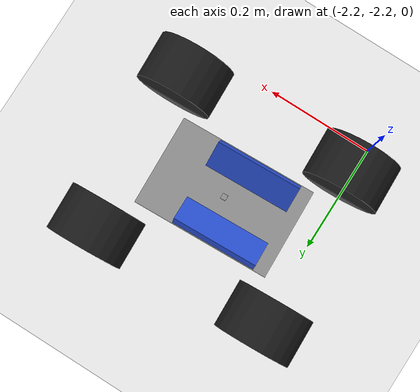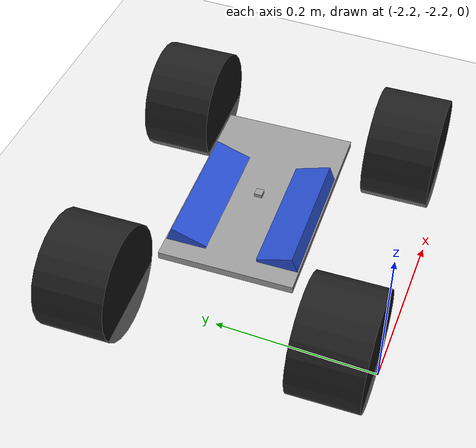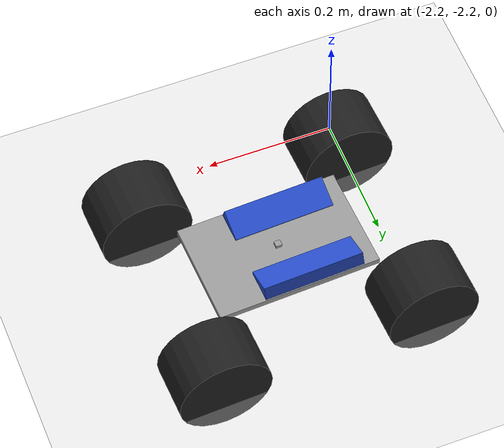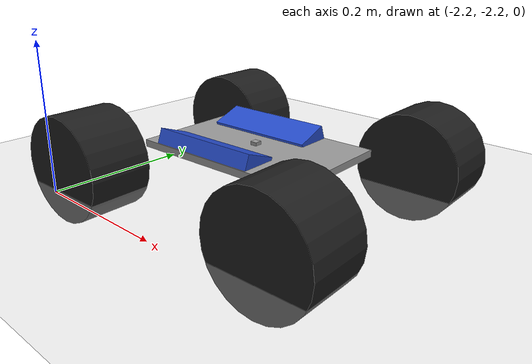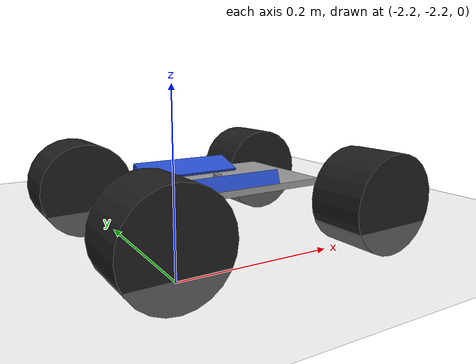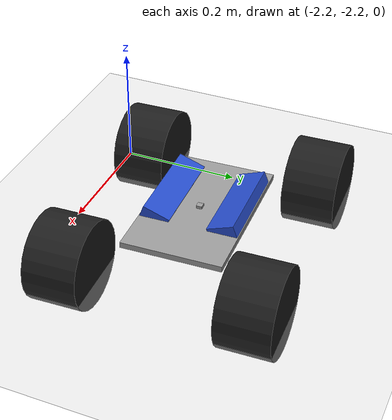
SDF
<sdf version="1.7">
 <world name="default">
  <light name="sun" type="directional">
   <pose>0 0 10 0 -0 0</pose>
   <diffuse>0.8 0.8 0.8 1</diffuse>
   <specular>0.2 0.2 0.2 1</specular>
   <attenuation>
    <range>1000</range>
    <constant>0.9</constant>
    <linear>0.01</linear>
    <quadratic>0.001</quadratic>
   </attenuation>
   <direction>-0.5 0.1 -0.9</direction>
   <spot><inner_angle>0</inner_angle><outer_angle>0</outer_angle><falloff>0</falloff></spot>
  </light>
  <model name="ground_plane">
   <static>1</static>
   <link name="link">
    <collision name="collision">
     <geometry><plane><normal>0 0 1</normal><size>100 100</size></plane></geometry>
     <surface>
      <contact><collide_bitmask>65535</collide_bitmask></contact>
      <friction><ode><mu>100</mu><mu2>50</mu2></ode></friction>
     </surface>
    </collision>
    <visual name="visual">
     <cast_shadows>0</cast_shadows>
     <geometry><plane><normal>0 0 1</normal><size>100 100</size></plane></geometry>
     <material>
      <script><uri>file://media/materials/scripts/gazebo.material</uri><name>Gazebo/Grey</name></script>
     </material>
    </visual>
   </link>
  </model>
  <gravity>0 0 -9.8</gravity>
  <magnetic_field>6e-06 2.3e-05 -4.2e-05</magnetic_field>
  <atmosphere type="adiabatic"/>
  <physics name="default_physics" default="0" type="ode">
   <max_step_size>0.001</max_step_size>
   <real_time_factor>1</real_time_factor>
   <real_time_update_rate>1000</real_time_update_rate>
  </physics>
  <scene><ambient>0.4 0.4 0.4 1</ambient><background>0.7 0.7 0.7 1</background><shadows>1</shadows></scene>
  <audio><device>default</device></audio>
  <spherical_coordinates>
   <surface_model>EARTH_WGS84</surface_model>
   <latitude_deg>0</latitude_deg>
   <longitude_deg>0</longitude_deg>
   <elevation>0</elevation>
   <heading_deg>0</heading_deg>
  </spherical_coordinates>
  <model name="ackermann_vehicle">
   <link name="base_link">
    <inertial>
     <pose>-0.006634 0 -0.003536 0 -0 0</pose>
     <mass>3.795</mass>
     <inertia>
      <ixx>0.0121404</ixx>
      <ixy>0</ixy>
      <ixz>0.000102071</ixz>
      <iyy>0.0201814</iyy>
      <iyz>0</iyz>
      <izz>0.0301018</izz>
     </inertia>
    </inertial>
    <collision name="base_link_fixed_joint_lump__chassis_collision">
     <pose>0 0 -0.005 0 -0 0</pose>
     <geometry><box><size>0.258 0.168 0.01</size></box></geometry>
    </collision>
    <collision name="base_link_fixed_joint_lump__left_battery_collision_1">
     <pose>-0.025 0.057319 0.00052 0.349066 -0 0</pose>
     <geometry><box><size>0.16 0.047 0.024</size></box></geometry>
    </collision>
    <collision name="base_link_fixed_joint_lump__right_battery_collision_2">
     <pose>-0.025 -0.057319 0.00052 -0.349066 0 0</pose>
     <geometry><box><size>0.16 0.047 0.024</size></box></geometry>
    </collision>
    <visual name="base_link_visual">
     <geometry><box><size>0.01 0.01 0.01</size></box></geometry>
     <material>
      <script><name>Gazebo/Grey</name><uri>file://media/materials/scripts/gazebo.material</uri></script>
     </material>
    </visual>
    <visual name="base_link_fixed_joint_lump__chassis_visual_1">
     <pose>0 0 -0.005 0 -0 0</pose>
     <geometry><box><size>0.258 0.168 0.01</size></box></geometry>
     <material>
      <script><name>Gazebo/Grey</name><uri>file://media/materials/scripts/gazebo.material</uri></script>
     </material>
    </visual>
    <visual name="base_link_fixed_joint_lump__left_battery_visual_2">
     <pose>-0.025 0.057319 0.00052 0.349066 -0 0</pose>
     <geometry><box><size>0.16 0.047 0.024</size></box></geometry>
     <material>
      <script><name>Gazebo/Blue</name><uri>file://media/materials/scripts/gazebo.material</uri></script>
     </material>
    </visual>
    <visual name="base_link_fixed_joint_lump__right_battery_visual_3">
     <pose>-0.025 -0.057319 0.00052 -0.349066 0 0</pose>
     <geometry><box><size>0.16 0.047 0.024</size></box></geometry>
     <material>
      <script><name>Gazebo/Blue</name><uri>file://media/materials/scripts/gazebo.material</uri></script>
     </material>
    </visual>
   </link>
   <joint name="left_front_shock" type="prismatic">
    <pose relative_to="base_link">0.1675 0.1525 -0.0235 0 -0 0</pose>
    <parent>base_link</parent>
    <child>left_steering_link</child>
    <axis>
     <xyz>0 0 -1</xyz>
     <limit><lower>-0.042</lower><upper>0.042</upper><effort>12.5106</effort><velocity>1000</velocity></limit>
     <dynamics><spring_reference>0</spring_reference><spring_stiffness>0</spring_stiffness></dynamics>
    </axis>
   </joint>
   <link name="left_steering_link">
    <pose relative_to="left_front_shock">0 0 0 0 -0 0</pose>
    <inertial>
     <mass>0.001</mass>
     <inertia><ixx>0.001</ixx><ixy>0</ixy><ixz>0</ixz><iyy>0.001</iyy><iyz>0</iyz><izz>0.001</izz></inertia>
    </inertial>
   </link>
   <joint name="left_steering_joint" type="revolute">
    <pose relative_to="left_steering_link">0 0 0 0 -0 0</pose>
    <parent>left_steering_link</parent>
    <child>left_front_axle_carrier</child>
    <axis>
     <xyz>0 0 1</xyz>
     <limit>
      <lower>-0.785398</lower>
      <upper>0.785398</upper>
      <effort>0.5649</effort>
      <velocity>4.553</velocity>
     </limit>
     <dynamics><spring_reference>0</spring_reference><spring_stiffness>0</spring_stiffness></dynamics>
    </axis>
   </joint>
   <link name="left_front_axle_carrier">
    <pose relative_to="left_steering_joint">0 0 0 0 -0 0</pose>
    <inertial>
     <mass>0.001</mass>
     <inertia><ixx>0.001</ixx><ixy>0</ixy><ixz>0</ixz><iyy>0.001</iyy><iyz>0</iyz><izz>0.001</izz></inertia>
    </inertial>
   </link>
   <joint name="left_front_axle" type="revolute">
    <pose relative_to="left_front_axle_carrier">0 0 0 1.5708 -0 0</pose>
    <parent>left_front_axle_carrier</parent>
    <child>left_front_wheel</child>
    <axis>
     <xyz>0 0 -1</xyz>
     <limit><effort>5.12766</effort><velocity>244.87</velocity><lower>-1e+16</lower><upper>1e+16</upper></limit>
     <dynamics><spring_reference>0</spring_reference><spring_stiffness>0</spring_stiffness></dynamics>
    </axis>
   </joint>
   <link name="left_front_wheel">
    <pose relative_to="left_front_axle">0 0 0 0 -0 0</pose>
    <inertial>
     <mass>0.29</mass>
     <inertia>
      <ixx>0.000746466</ixx>
      <ixy>0</ixy>
      <ixz>0</ixz>
      <iyy>0.000746466</iyy>
      <iyz>0</iyz>
      <izz>0.00111094</izz>
     </inertia>
    </inertial>
    <collision name="left_front_wheel_collision">
     <geometry><cylinder><length>0.0889</length><radius>0.073025</radius></cylinder></geometry>
    </collision>
    <visual name="left_front_wheel_visual">
     <geometry><cylinder><length>0.0889</length><radius>0.073025</radius></cylinder></geometry>
     <material>
      <script><name>Gazebo/Black</name><uri>file://media/materials/scripts/gazebo.material</uri></script>
     </material>
    </visual>
   </link>
   <joint name="left_rear_shock" type="prismatic">
    <pose relative_to="base_link">-0.1675 0.1525 -0.0235 0 -0 0</pose>
    <parent>base_link</parent>
    <child>left_rear_axle_carrier</child>
    <axis>
     <xyz>0 0 -1</xyz>
     <limit><lower>-0.042</lower><upper>0.042</upper><effort>12.5106</effort><velocity>1000</velocity></limit>
     <dynamics><spring_reference>0</spring_reference><spring_stiffness>0</spring_stiffness></dynamics>
    </axis>
   </joint>
   <link name="left_rear_axle_carrier">
    <pose relative_to="left_rear_shock">0 0 0 0 -0 0</pose>
    <inertial>
     <mass>0.001</mass>
     <inertia><ixx>0.001</ixx><ixy>0</ixy><ixz>0</ixz><iyy>0.001</iyy><iyz>0</iyz><izz>0.001</izz></inertia>
    </inertial>
   </link>
   <joint name="left_rear_axle" type="revolute">
    <pose relative_to="left_rear_axle_carrier">0 0 0 1.5708 -0 0</pose>
    <parent>left_rear_axle_carrier</parent>
    <child>left_rear_wheel</child>
    <axis>
     <xyz>0 0 -1</xyz>
     <limit><effort>5.12766</effort><velocity>244.87</velocity><lower>-1e+16</lower><upper>1e+16</upper></limit>
     <dynamics><spring_reference>0</spring_reference><spring_stiffness>0</spring_stiffness></dynamics>
    </axis>
   </joint>
   <link name="left_rear_wheel">
    <pose relative_to="left_rear_axle">0 0 0 0 -0 0</pose>
    <inertial>
     <mass>0.29</mass>
     <inertia>
      <ixx>0.000746466</ixx>
      <ixy>0</ixy>
      <ixz>0</ixz>
      <iyy>0.000746466</iyy>
      <iyz>0</iyz>
      <izz>0.00111094</izz>
     </inertia>
    </inertial>
    <collision name="left_rear_wheel_collision">
     <geometry><cylinder><length>0.0889</length><radius>0.073025</radius></cylinder></geometry>
    </collision>
    <visual name="left_rear_wheel_visual">
     <geometry><cylinder><length>0.0889</length><radius>0.073025</radius></cylinder></geometry>
     <material>
      <script><name>Gazebo/Black</name><uri>file://media/materials/scripts/gazebo.material</uri></script>
     </material>
    </visual>
   </link>
   <joint name="right_front_shock" type="prismatic">
    <pose relative_to="base_link">0.1675 -0.1525 -0.0235 0 -0 0</pose>
    <parent>base_link</parent>
    <child>right_steering_link</child>
    <axis>
     <xyz>0 0 -1</xyz>
     <limit><lower>-0.042</lower><upper>0.042</upper><effort>12.5106</effort><velocity>1000</velocity></limit>
     <dynamics><spring_reference>0</spring_reference><spring_stiffness>0</spring_stiffness></dynamics>
    </axis>
   </joint>
   <link name="right_steering_link">
    <pose relative_to="right_front_shock">0 0 0 0 -0 0</pose>
    <inertial>
     <mass>0.001</mass>
     <inertia><ixx>0.001</ixx><ixy>0</ixy><ixz>0</ixz><iyy>0.001</iyy><iyz>0</iyz><izz>0.001</izz></inertia>
    </inertial>
   </link>
   <joint name="right_steering_joint" type="revolute">
    <pose relative_to="right_steering_link">0 0 0 0 -0 0</pose>
    <parent>right_steering_link</parent>
    <child>right_front_axle_carrier</child>
    <axis>
     <xyz>0 0 1</xyz>
     <limit>
      <lower>-0.785398</lower>
      <upper>0.785398</upper>
      <effort>0.5649</effort>
      <velocity>4.553</velocity>
     </limit>
     <dynamics><spring_reference>0</spring_reference><spring_stiffness>0</spring_stiffness></dynamics>
    </axis>
   </joint>
   <link name="right_front_axle_carrier">
    <pose relative_to="right_steering_joint">0 0 0 0 -0 0</pose>
    <inertial>
     <mass>0.001</mass>
     <inertia><ixx>0.001</ixx><ixy>0</ixy><ixz>0</ixz><iyy>0.001</iyy><iyz>0</iyz><izz>0.001</izz></inertia>
    </inertial>
   </link>
   <joint name="right_front_axle" type="revolute">
    <pose relative_to="right_front_axle_carrier">0 0 0 1.5708 -0 0</pose>
    <parent>right_front_axle_carrier</parent>
    <child>right_front_wheel</child>
    <axis>
     <xyz>0 0 -1</xyz>
     <limit><effort>5.12766</effort><velocity>244.87</velocity><lower>-1e+16</lower><upper>1e+16</upper></limit>
     <dynamics><spring_reference>0</spring_reference><spring_stiffness>0</spring_stiffness></dynamics>
    </axis>
   </joint>
   <link name="right_front_wheel">
    <pose relative_to="right_front_axle">0 0 0 0 -0 0</pose>
    <inertial>
     <mass>0.29</mass>
     <inertia>
      <ixx>0.000746466</ixx>
      <ixy>0</ixy>
      <ixz>0</ixz>
      <iyy>0.000746466</iyy>
      <iyz>0</iyz>
      <izz>0.00111094</izz>
     </inertia>
    </inertial>
    <collision name="right_front_wheel_collision">
     <geometry><cylinder><length>0.0889</length><radius>0.073025</radius></cylinder></geometry>
    </collision>
    <visual name="right_front_wheel_visual">
     <geometry><cylinder><length>0.0889</length><radius>0.073025</radius></cylinder></geometry>
     <material>
      <script><name>Gazebo/Black</name><uri>file://media/materials/scripts/gazebo.material</uri></script>
     </material>
    </visual>
   </link>
   <joint name="right_rear_shock" type="prismatic">
    <pose relative_to="base_link">-0.1675 -0.1525 -0.0235 0 -0 0</pose>
    <parent>base_link</parent>
    <child>right_rear_axle_carrier</child>
    <axis>
     <xyz>0 0 -1</xyz>
     <limit><lower>-0.042</lower><upper>0.042</upper><effort>12.5106</effort><velocity>1000</velocity></limit>
     <dynamics><spring_reference>0</spring_reference><spring_stiffness>0</spring_stiffness></dynamics>
    </axis>
   </joint>
   <link name="right_rear_axle_carrier">
    <pose relative_to="right_rear_shock">0 0 0 0 -0 0</pose>
    <inertial>
     <mass>0.001</mass>
     <inertia><ixx>0.001</ixx><ixy>0</ixy><ixz>0</ixz><iyy>0.001</iyy><iyz>0</iyz><izz>0.001</izz></inertia>
    </inertial>
   </link>
   <joint name="right_rear_axle" type="revolute">
    <pose relative_to="right_rear_axle_carrier">0 0 0 1.5708 -0 0</pose>
    <parent>right_rear_axle_carrier</parent>
    <child>right_rear_wheel</child>
    <axis>
     <xyz>0 0 -1</xyz>
     <limit><effort>5.12766</effort><velocity>244.87</velocity><lower>-1e+16</lower><upper>1e+16</upper></limit>
     <dynamics><spring_reference>0</spring_reference><spring_stiffness>0</spring_stiffness></dynamics>
    </axis>
   </joint>
   <link name="right_rear_wheel">
    <pose relative_to="right_rear_axle">0 0 0 0 -0 0</pose>
    <inertial>
     <mass>0.29</mass>
     <inertia>
      <ixx>0.000746466</ixx>
      <ixy>0</ixy>
      <ixz>0</ixz>
      <iyy>0.000746466</iyy>
      <iyz>0</iyz>
      <izz>0.00111094</izz>
     </inertia>
    </inertial>
    <collision name="right_rear_wheel_collision">
     <geometry><cylinder><length>0.0889</length><radius>0.073025</radius></cylinder></geometry>
    </collision>
    <visual name="right_rear_wheel_visual">
     <geometry><cylinder><length>0.0889</length><radius>0.073025</radius></cylinder></geometry>
     <material>
      <script><name>Gazebo/Black</name><uri>file://media/materials/scripts/gazebo.material</uri></script>
     </material>
    </visual>
   </link>
   <plugin name="gazebo_ros_control" filename="libgazebo_ros_control.so">
    <robotNamespace>/</robotNamespace>
   </plugin>
   <frame name="offset_to_left_battery" attached_to="left_battery_offset">
    <pose>0 0.0235 -0.008 0 -0 0</pose>
   </frame>
   <frame name="left_battery" attached_to="offset_to_left_battery"/>
   <frame name="chassis_to_left_battery" attached_to="chassis"><pose>-0.025 0.0325 0 0.349066 -0 0</pose></frame>
   <frame name="left_battery_offset" attached_to="chassis_to_left_battery"/>
   <frame name="offset_to_right_battery" attached_to="right_battery_offset">
    <pose>0 -0.0235 -0.008 0 -0 0</pose>
   </frame>
   <frame name="right_battery" attached_to="offset_to_right_battery"/>
   <frame name="chassis_to_right_battery" attached_to="chassis">
    <pose>-0.025 -0.0325 0 -0.349066 0 0</pose>
   </frame>
   <frame name="right_battery_offset" attached_to="chassis_to_right_battery"/>
   <frame name="base_link_to_chassis" attached_to="base_link"/>
   <frame name="chassis" attached_to="base_link_to_chassis"/>
   <pose>-2.03169 -1.99116 0.054106 1e-06 0.000544 0.039818</pose>
  </model>
 </world>
</sdf>
